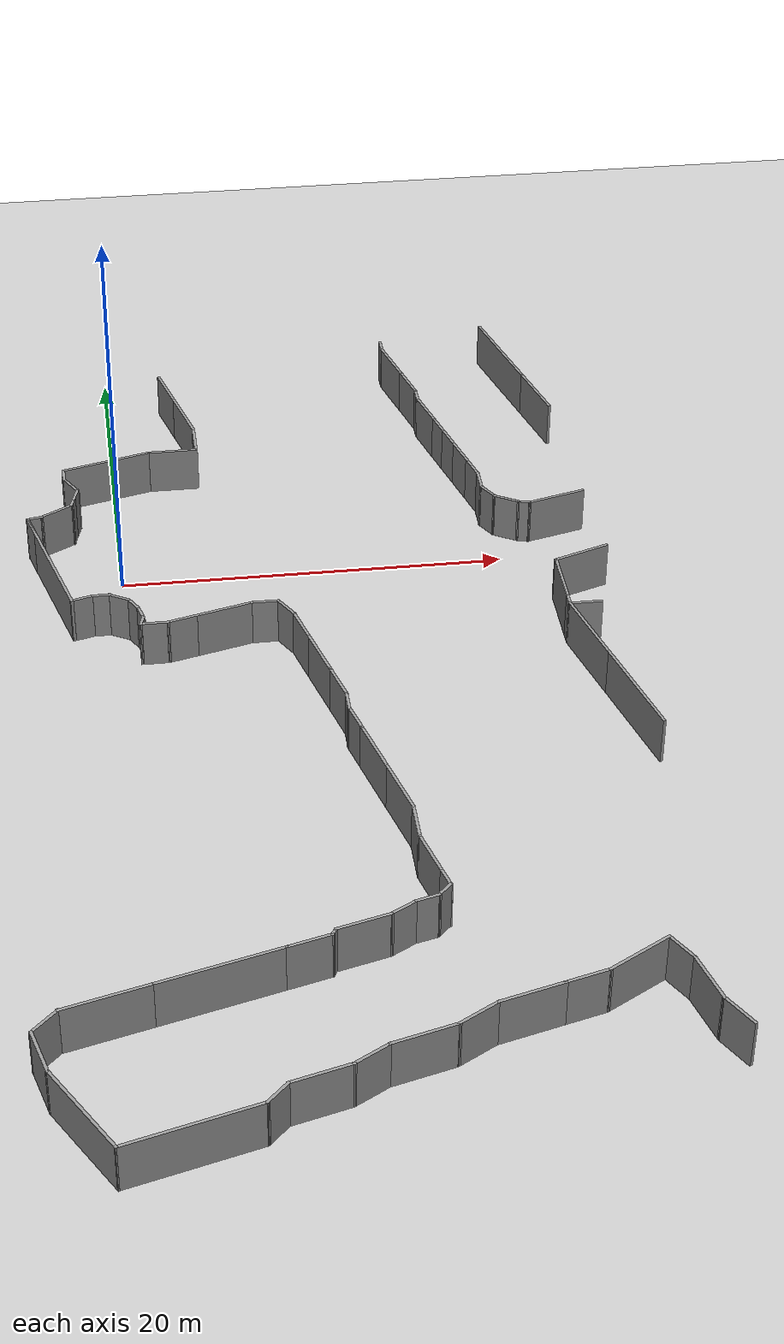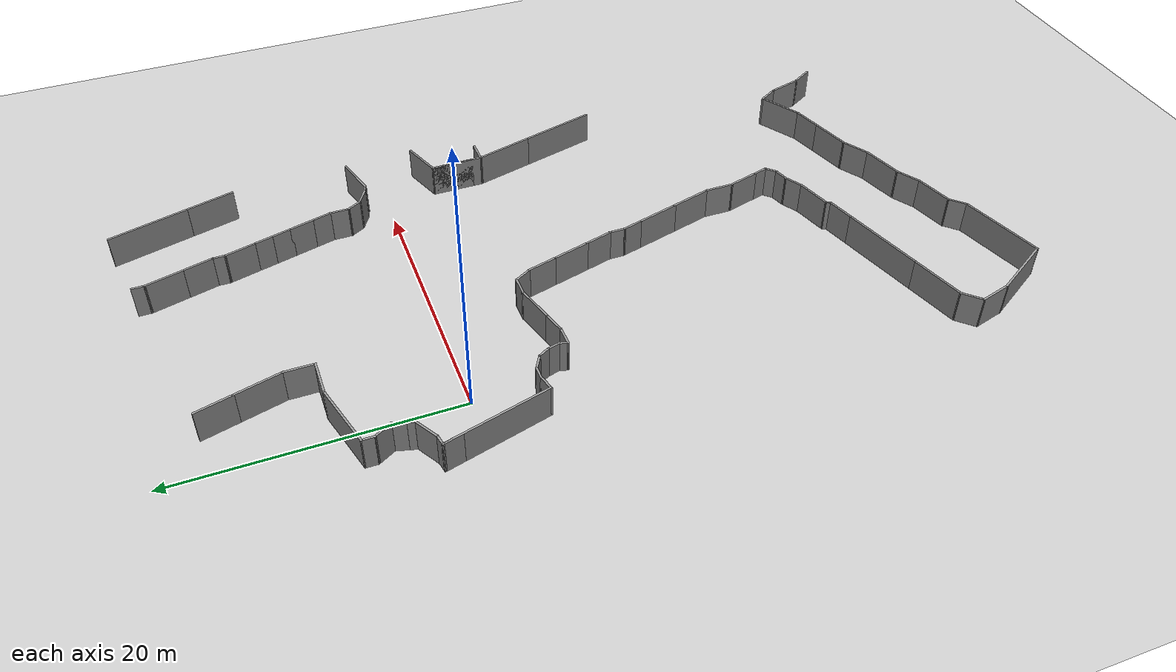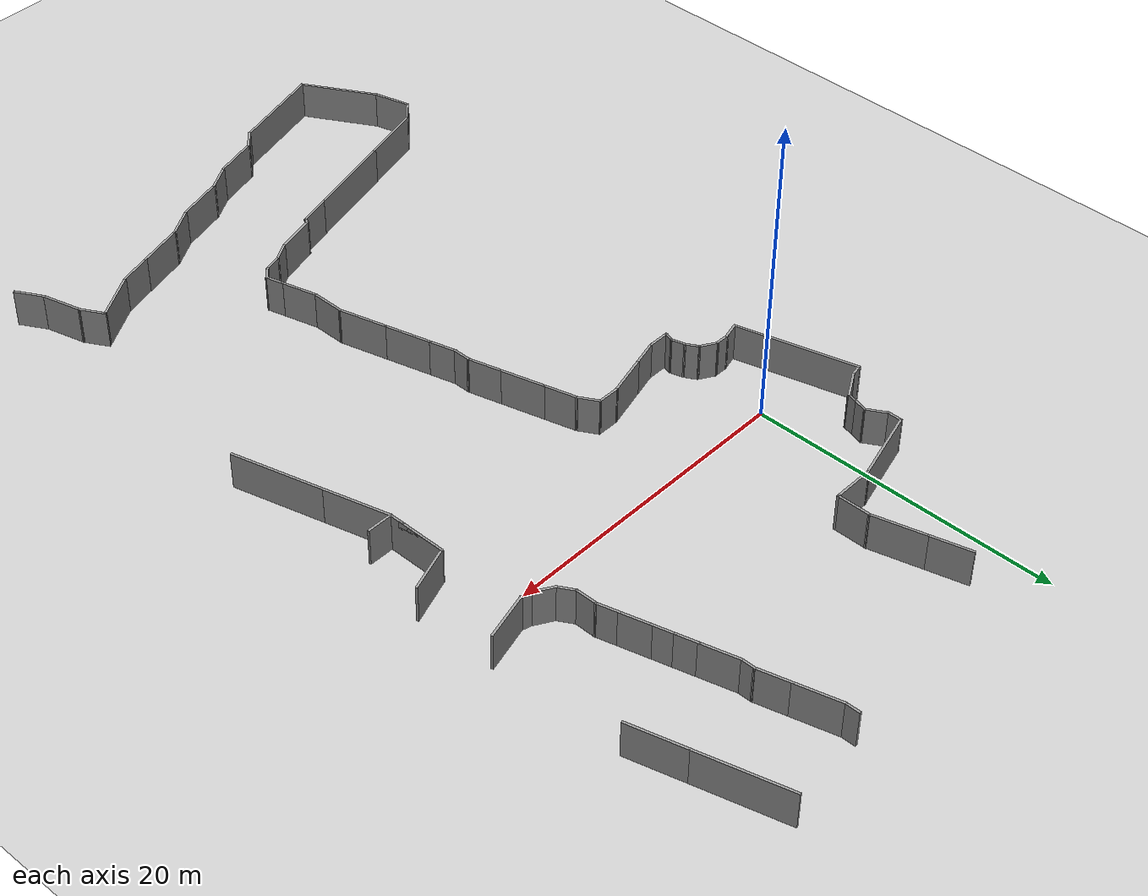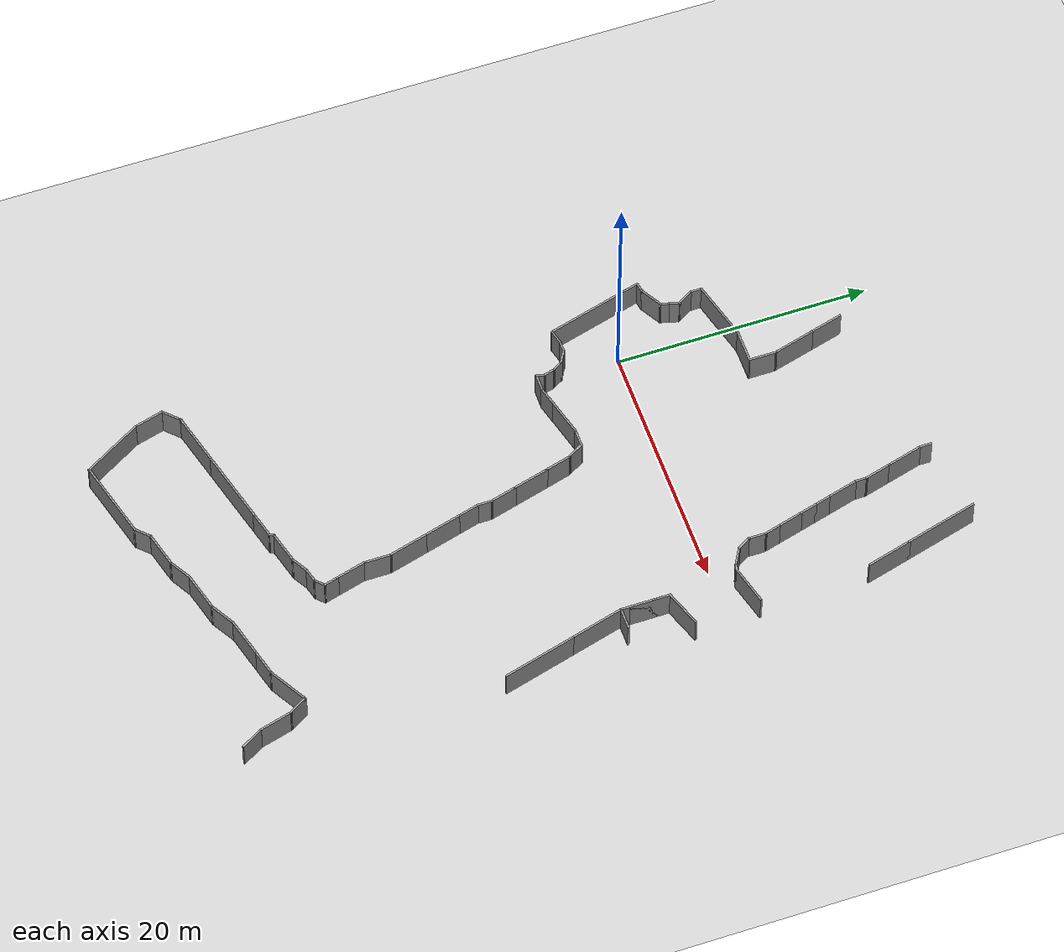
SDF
<sdf version="1.7">
 <world name="default">
  <model name="ground_plane">
   <static>1</static>
   <link name="link">
    <collision name="collision">
     <geometry><plane><normal>0 0 1</normal><size>500 500</size></plane></geometry>
     <surface><friction><ode><mu>100</mu><mu2>50</mu2></ode></friction></surface>
    </collision>
    <visual name="visual">
     <cast_shadows>0</cast_shadows>
     <geometry><plane><normal>0 0 1</normal><size>500 500</size></plane></geometry>
     <material>
      <script><uri>file://media/materials/scripts/gazebo.material</uri><name>Gazebo/Grey</name></script>
     </material>
    </visual>
   </link>
  </model>
  <model name="out_door1">
   <pose>25.5832 12.3476 0 0 -0 0</pose>
   <link name="Wall_10">
    <collision name="Wall_10_Collision">
     <geometry><box><size>1.75 0.15 2.5</size></box></geometry>
     <pose>0 0 1.25 0 -0 0</pose>
    </collision>
    <visual name="Wall_10_Visual">
     <pose>0 0 1.25 0 -0 0</pose>
     <geometry><box><size>1.75 0.15 2.5</size></box></geometry>
     <material>
      <script><uri>file://media/materials/scripts/gazebo.material</uri><name>Gazebo/Grey</name></script>
      <ambient>1 1 1 1</ambient>
     </material>
     <meta><layer>0</layer></meta>
    </visual>
    <pose>-22.8083 -18.9852 0 0 -0 0.261799</pose>
   </link>
   <link name="Wall_11">
    <collision name="Wall_11_Collision">
     <geometry><box><size>3 0.15 2.5</size></box></geometry>
     <pose>0 0 1.25 0 -0 0</pose>
    </collision>
    <visual name="Wall_11_Visual">
     <pose>0 0 1.25 0 -0 0</pose>
     <geometry><box><size>3 0.15 2.5</size></box></geometry>
     <material>
      <script><uri>file://media/materials/scripts/gazebo.material</uri><name>Gazebo/Grey</name></script>
      <ambient>1 1 1 1</ambient>
     </material>
     <meta><layer>0</layer></meta>
    </visual>
    <pose>-20.6591 -18.4094 0 0 -0 0.261799</pose>
   </link>
   <link name="Wall_12">
    <collision name="Wall_12_Collision">
     <geometry><box><size>1.5 0.15 2.5</size></box></geometry>
     <pose>0 0 1.25 0 -0 0</pose>
    </collision>
    <visual name="Wall_12_Visual">
     <pose>0 0 1.25 0 -0 0</pose>
     <geometry><box><size>1.5 0.15 2.5</size></box></geometry>
     <material>
      <script><uri>file://media/materials/scripts/gazebo.material</uri><name>Gazebo/Grey</name></script>
      <ambient>1 1 1 1</ambient>
     </material>
     <meta><layer>0</layer></meta>
    </visual>
    <pose>-18.6076 -18.0405 0 0 -0 0</pose>
   </link>
   <link name="Wall_14">
    <collision name="Wall_14_Collision">
     <geometry><box><size>1.5 0.15 2.5</size></box></geometry>
     <pose>0 0 1.25 0 -0 0</pose>
    </collision>
    <visual name="Wall_14_Visual">
     <pose>0 0 1.25 0 -0 0</pose>
     <geometry><box><size>1.5 0.15 2.5</size></box></geometry>
     <material>
      <script><uri>file://media/materials/scripts/gazebo.material</uri><name>Gazebo/Grey</name></script>
      <ambient>1 1 1 1</ambient>
     </material>
     <meta><layer>0</layer></meta>
    </visual>
    <pose>-17.5951 -18.6251 0 0 -0 -1.0472</pose>
   </link>
   <link name="Wall_15">
    <collision name="Wall_15_Collision">
     <geometry><box><size>2.25 0.15 2.5</size></box></geometry>
     <pose>0 0 1.25 0 -0 0</pose>
    </collision>
    <visual name="Wall_15_Visual">
     <pose>0 0 1.25 0 -0 0</pose>
     <geometry><box><size>2.25 0.15 2.5</size></box></geometry>
     <material>
      <script><uri>file://media/materials/scripts/gazebo.material</uri><name>Gazebo/Grey</name></script>
      <ambient>1 1 1 1</ambient>
     </material>
     <meta><layer>0</layer></meta>
    </visual>
    <pose>-16.9859 -20.2239 0 0 -0 -1.309</pose>
   </link>
   <link name="Wall_16">
    <collision name="Wall_16_Collision">
     <geometry><box><size>3 0.15 2.5</size></box></geometry>
     <pose>0 0 1.25 0 -0 0</pose>
    </collision>
    <visual name="Wall_16_Visual">
     <pose>0 0 1.25 0 -0 0</pose>
     <geometry><box><size>3 0.15 2.5</size></box></geometry>
     <material>
      <script><uri>file://media/materials/scripts/gazebo.material</uri><name>Gazebo/Grey</name></script>
      <ambient>1 1 1 1</ambient>
     </material>
     <meta><layer>0</layer></meta>
    </visual>
    <pose>-16.3453 -22.6146 0 0 -0 -1.309</pose>
   </link>
   <link name="Wall_17">
    <collision name="Wall_17_Collision">
     <geometry><box><size>2.25 0.15 2.5</size></box></geometry>
     <pose>0 0 1.25 0 -0 0</pose>
    </collision>
    <visual name="Wall_17_Visual">
     <pose>0 0 1.25 0 -0 0</pose>
     <geometry><box><size>2.25 0.15 2.5</size></box></geometry>
     <material>
      <script><uri>file://media/materials/scripts/gazebo.material</uri><name>Gazebo/Grey</name></script>
      <ambient>1 1 1 1</ambient>
     </material>
     <meta><layer>0</layer></meta>
    </visual>
    <pose>-15.7047 -25.0052 0 0 -0 -1.309</pose>
   </link>
   <link name="Wall_18">
    <collision name="Wall_18_Collision">
     <geometry><box><size>1.25 0.15 2.5</size></box></geometry>
     <pose>0 0 1.25 0 -0 0</pose>
    </collision>
    <visual name="Wall_18_Visual">
     <pose>0 0 1.25 0 -0 0</pose>
     <geometry><box><size>1.25 0.15 2.5</size></box></geometry>
     <material>
      <script><uri>file://media/materials/scripts/gazebo.material</uri><name>Gazebo/Grey</name></script>
      <ambient>1 1 1 1</ambient>
     </material>
     <meta><layer>0</layer></meta>
    </visual>
    <pose>-15.433 -26.5695 0 0 -0 -1.5708</pose>
   </link>
   <link name="Wall_19">
    <collision name="Wall_19_Collision">
     <geometry><box><size>1.75 0.15 2.5</size></box></geometry>
     <pose>0 0 1.25 0 -0 0</pose>
    </collision>
    <visual name="Wall_19_Visual">
     <pose>0 0 1.25 0 -0 0</pose>
     <geometry><box><size>1.75 0.15 2.5</size></box></geometry>
     <material>
      <script><uri>file://media/materials/scripts/gazebo.material</uri><name>Gazebo/Grey</name></script>
      <ambient>1 1 1 1</ambient>
     </material>
     <meta><layer>0</layer></meta>
    </visual>
    <pose>-15.2259 -27.8922 0 0 -0 -1.309</pose>
   </link>
   <link name="Wall_2">
    <collision name="Wall_2_Collision">
     <geometry><box><size>8 0.15 2.5</size></box></geometry>
     <pose>0 0 1.25 0 -0 0</pose>
    </collision>
    <visual name="Wall_2_Visual">
     <pose>0 0 1.25 0 -0 0</pose>
     <geometry><box><size>8 0.15 2.5</size></box></geometry>
     <material>
      <script><uri>file://media/materials/scripts/gazebo.material</uri><name>Gazebo/Grey</name></script>
      <ambient>1 1 1 1</ambient>
     </material>
     <meta><layer>0</layer></meta>
    </visual>
    <pose>-29.3017 -12.999 0 0 -0 -1.309</pose>
   </link>
   <link name="Wall_20">
    <collision name="Wall_20_Collision">
     <geometry><box><size>3.25 0.15 2.5</size></box></geometry>
     <pose>0 0 1.25 0 -0 0</pose>
    </collision>
    <visual name="Wall_20_Visual">
     <pose>0 0 1.25 0 -0 0</pose>
     <geometry><box><size>3.25 0.15 2.5</size></box></geometry>
     <material>
      <script><uri>file://media/materials/scripts/gazebo.material</uri><name>Gazebo/Grey</name></script>
      <ambient>1 1 1 1</ambient>
     </material>
     <meta><layer>0</layer></meta>
    </visual>
    <pose>-14.6177 -30.1621 0 0 -0 -1.309</pose>
   </link>
   <link name="Wall_21">
    <collision name="Wall_21_Collision">
     <geometry><box><size>3.25 0.15 2.5</size></box></geometry>
     <pose>0 0 1.25 0 -0 0</pose>
    </collision>
    <visual name="Wall_21_Visual">
     <pose>0 0 1.25 0 -0 0</pose>
     <geometry><box><size>3.25 0.15 2.5</size></box></geometry>
     <material>
      <script><uri>file://media/materials/scripts/gazebo.material</uri><name>Gazebo/Grey</name></script>
      <ambient>1 1 1 1</ambient>
     </material>
     <meta><layer>0</layer></meta>
    </visual>
    <pose>-13.8153 -33.1565 0 0 -0 -1.309</pose>
   </link>
   <link name="Wall_22">
    <collision name="Wall_22_Collision">
     <geometry><box><size>2.25 0.15 2.5</size></box></geometry>
     <pose>0 0 1.25 0 -0 0</pose>
    </collision>
    <visual name="Wall_22_Visual">
     <pose>0 0 1.25 0 -0 0</pose>
     <geometry><box><size>2.25 0.15 2.5</size></box></geometry>
     <material>
      <script><uri>file://media/materials/scripts/gazebo.material</uri><name>Gazebo/Grey</name></script>
      <ambient>1 1 1 1</ambient>
     </material>
     <meta><layer>0</layer></meta>
    </visual>
    <pose>-13.4142 -35.7037 0 0 -0 -1.5708</pose>
   </link>
   <link name="Wall_23">
    <collision name="Wall_23_Collision">
     <geometry><box><size>2.5 0.15 2.5</size></box></geometry>
     <pose>0 0 1.25 0 -0 0</pose>
    </collision>
    <visual name="Wall_23_Visual">
     <pose>0 0 1.25 0 -0 0</pose>
     <geometry><box><size>2.5 0.15 2.5</size></box></geometry>
     <material>
      <script><uri>file://media/materials/scripts/gazebo.material</uri><name>Gazebo/Grey</name></script>
      <ambient>1 1 1 1</ambient>
     </material>
     <meta><layer>0</layer></meta>
    </visual>
    <pose>-13.1101 -37.8886 0 0 -0 -1.309</pose>
   </link>
   <link name="Wall_24">
    <collision name="Wall_24_Collision">
     <geometry><box><size>1.25 0.15 2.5</size></box></geometry>
     <pose>0 0 1.25 0 -0 0</pose>
    </collision>
    <visual name="Wall_24_Visual">
     <pose>0 0 1.25 0 -0 0</pose>
     <geometry><box><size>1.25 0.15 2.5</size></box></geometry>
     <material>
      <script><uri>file://media/materials/scripts/gazebo.material</uri><name>Gazebo/Grey</name></script>
      <ambient>1 1 1 1</ambient>
     </material>
     <meta><layer>0</layer></meta>
    </visual>
    <pose>-12.6636 -39.5549 0 0 -0 -1.309</pose>
   </link>
   <link name="Wall_26">
    <collision name="Wall_26_Collision">
     <geometry><box><size>1 0.15 2.5</size></box></geometry>
     <pose>0 0 1.25 0 -0 0</pose>
    </collision>
    <visual name="Wall_26_Visual">
     <pose>0 0 1.25 0 -0 0</pose>
     <geometry><box><size>1 0.15 2.5</size></box></geometry>
     <material>
      <script><uri>file://media/materials/scripts/gazebo.material</uri><name>Gazebo/Grey</name></script>
      <ambient>1 1 1 1</ambient>
     </material>
     <meta><layer>0</layer></meta>
    </visual>
    <pose>-12.8218 -40.3866 0 0 -0 -2.35619</pose>
   </link>
   <link name="Wall_267">
    <collision name="Wall_267_Collision">
     <geometry><box><size>2.75 0.15 2.5</size></box></geometry>
     <pose>0 0 1.25 0 -0 0</pose>
    </collision>
    <visual name="Wall_267_Visual">
     <pose>0 0 1.25 0 -0 0</pose>
     <geometry><box><size>2.75 0.15 2.5</size></box></geometry>
     <material>
      <script><uri>file://media/materials/scripts/gazebo.material</uri><name>Gazebo/Grey</name></script>
      <ambient>1 1 1 1</ambient>
     </material>
     <meta><layer>0</layer></meta>
    </visual>
    <pose>-22.2121 3.1268 0 0 -0 -1.309</pose>
   </link>
   <link name="Wall_268">
    <collision name="Wall_268_Collision">
     <geometry><box><size>3.5 0.15 2.5</size></box></geometry>
     <pose>0 0 1.25 0 -0 0</pose>
    </collision>
    <visual name="Wall_268_Visual">
     <pose>0 0 1.25 0 -0 0</pose>
     <geometry><box><size>3.5 0.15 2.5</size></box></geometry>
     <material>
      <script><uri>file://media/materials/scripts/gazebo.material</uri><name>Gazebo/Grey</name></script>
      <ambient>1 1 1 1</ambient>
     </material>
     <meta><layer>0</layer></meta>
    </visual>
    <pose>-21.4421 0.25317 0 0 -0 -1.309</pose>
   </link>
   <link name="Wall_269">
    <collision name="Wall_269_Collision">
     <geometry><box><size>2.25 0.15 2.5</size></box></geometry>
     <pose>0 0 1.25 0 -0 0</pose>
    </collision>
    <visual name="Wall_269_Visual">
     <pose>0 0 1.25 0 -0 0</pose>
     <geometry><box><size>2.25 0.15 2.5</size></box></geometry>
     <material>
      <script><uri>file://media/materials/scripts/gazebo.material</uri><name>Gazebo/Grey</name></script>
      <ambient>1 1 1 1</ambient>
     </material>
     <meta><layer>0</layer></meta>
    </visual>
    <pose>-21.0086 -2.41475 0 0 -0 -1.5708</pose>
   </link>
   <link name="Wall_27">
    <collision name="Wall_27_Collision">
     <geometry><box><size>1.25 0.15 2.5</size></box></geometry>
     <pose>0 0 1.25 0 -0 0</pose>
    </collision>
    <visual name="Wall_27_Visual">
     <pose>0 0 1.25 0 -0 0</pose>
     <geometry><box><size>1.25 0.15 2.5</size></box></geometry>
     <material>
      <script><uri>file://media/materials/scripts/gazebo.material</uri><name>Gazebo/Grey</name></script>
      <ambient>1 1 1 1</ambient>
     </material>
     <meta><layer>0</layer></meta>
    </visual>
    <pose>-13.6535 -40.8295 0 0 -0 -2.87979</pose>
   </link>
   <link name="Wall_270">
    <collision name="Wall_270_Collision">
     <geometry><box><size>2.75 0.15 2.5</size></box></geometry>
     <pose>0 0 1.25 0 -0 0</pose>
    </collision>
    <visual name="Wall_270_Visual">
     <pose>0 0 1.25 0 -0 0</pose>
     <geometry><box><size>2.75 0.15 2.5</size></box></geometry>
     <material>
      <script><uri>file://media/materials/scripts/gazebo.material</uri><name>Gazebo/Grey</name></script>
      <ambient>1 1 1 1</ambient>
     </material>
     <meta><layer>0</layer></meta>
    </visual>
    <pose>-22.3086 -3.46475 0 0 -0 3.14159</pose>
   </link>
   <link name="Wall_271">
    <collision name="Wall_271_Collision">
     <geometry><box><size>5 0.15 2.5</size></box></geometry>
     <pose>0 0 1.25 0 -0 0</pose>
    </collision>
    <visual name="Wall_271_Visual">
     <pose>0 0 1.25 0 -0 0</pose>
     <geometry><box><size>5 0.15 2.5</size></box></geometry>
     <material>
      <script><uri>file://media/materials/scripts/gazebo.material</uri><name>Gazebo/Grey</name></script>
      <ambient>1 1 1 1</ambient>
     </material>
     <meta><layer>0</layer></meta>
    </visual>
    <pose>-25.9509 -4.09239 0 0 -0 -2.87979</pose>
   </link>
   <link name="Wall_272">
    <collision name="Wall_272_Collision">
     <geometry><box><size>1 0.15 2.5</size></box></geometry>
     <pose>0 0 1.25 0 -0 0</pose>
    </collision>
    <visual name="Wall_272_Visual">
     <pose>0 0 1.25 0 -0 0</pose>
     <geometry><box><size>1 0.15 2.5</size></box></geometry>
     <material>
      <script><uri>file://media/materials/scripts/gazebo.material</uri><name>Gazebo/Grey</name></script>
      <ambient>1 1 1 1</ambient>
     </material>
     <meta><layer>0</layer></meta>
    </visual>
    <pose>-28.2933 -5.14503 0 0 -0 -1.5708</pose>
   </link>
   <link name="Wall_273">
    <collision name="Wall_273_Collision">
     <geometry><box><size>1.5 0.15 2.5</size></box></geometry>
     <pose>0 0 1.25 0 -0 0</pose>
    </collision>
    <visual name="Wall_273_Visual">
     <pose>0 0 1.25 0 -0 0</pose>
     <geometry><box><size>1.5 0.15 2.5</size></box></geometry>
     <material>
      <script><uri>file://media/materials/scripts/gazebo.material</uri><name>Gazebo/Grey</name></script>
      <ambient>1 1 1 1</ambient>
     </material>
     <meta><layer>0</layer></meta>
    </visual>
    <pose>-27.9558 -6.15459 0 0 -0 -1.0472</pose>
   </link>
   <link name="Wall_274">
    <collision name="Wall_274_Collision">
     <geometry><box><size>1 0.15 2.5</size></box></geometry>
     <pose>0 0 1.25 0 -0 0</pose>
    </collision>
    <visual name="Wall_274_Visual">
     <pose>0 0 1.25 0 -0 0</pose>
     <geometry><box><size>1 0.15 2.5</size></box></geometry>
     <material>
      <script><uri>file://media/materials/scripts/gazebo.material</uri><name>Gazebo/Grey</name></script>
      <ambient>1 1 1 1</ambient>
     </material>
     <meta><layer>0</layer></meta>
    </visual>
    <pose>-27.7283 -7.14968 0 0 -0 -1.8326</pose>
   </link>
   <link name="Wall_275">
    <collision name="Wall_275_Collision">
     <geometry><box><size>0.75 0.15 2.5</size></box></geometry>
     <pose>0 0 1.25 0 -0 0</pose>
    </collision>
    <visual name="Wall_275_Visual">
     <pose>0 0 1.25 0 -0 0</pose>
     <geometry><box><size>0.75 0.15 2.5</size></box></geometry>
     <material>
      <script><uri>file://media/materials/scripts/gazebo.material</uri><name>Gazebo/Grey</name></script>
      <ambient>1 1 1 1</ambient>
     </material>
     <meta><layer>0</layer></meta>
    </visual>
    <pose>-27.9159 -7.84998 0 0 -0 -1.8326</pose>
   </link>
   <link name="Wall_276">
    <collision name="Wall_276_Collision">
     <geometry><box><size>2 0.15 2.5</size></box></geometry>
     <pose>0 0 1.25 0 -0 0</pose>
    </collision>
    <visual name="Wall_276_Visual">
     <pose>0 0 1.25 0 -0 0</pose>
     <geometry><box><size>2 0.15 2.5</size></box></geometry>
     <material>
      <script><uri>file://media/materials/scripts/gazebo.material</uri><name>Gazebo/Grey</name></script>
      <ambient>1 1 1 1</ambient>
     </material>
     <meta><layer>0</layer></meta>
    </visual>
    <pose>-28.7947 -8.60225 0 0 -0 -2.61799</pose>
   </link>
   <link name="Wall_277">
    <collision name="Wall_277_Collision">
     <geometry><box><size>0.885879 0.15 2.5</size></box></geometry>
     <pose>0 0 1.25 0 -0 0</pose>
    </collision>
    <visual name="Wall_277_Visual">
     <pose>0 0 1.25 0 -0 0</pose>
     <geometry><box><size>0.885879 0.15 2.5</size></box></geometry>
     <material>
      <script><uri>file://media/materials/scripts/gazebo.material</uri><name>Gazebo/Grey</name></script>
      <ambient>1 1 1 1</ambient>
     </material>
     <meta><layer>0</layer></meta>
    </visual>
    <pose>-29.9567 -9.13626 0 0 -0 -2.94602</pose>
   </link>
   <link name="Wall_278">
    <collision name="Wall_278_Collision">
     <geometry><box><size>1.5 0.15 2.5</size></box></geometry>
     <pose>0 0 1.25 0 -0 0</pose>
    </collision>
    <visual name="Wall_278_Visual">
     <pose>0 0 1.25 0 -0 0</pose>
     <geometry><box><size>1.5 0.15 2.5</size></box></geometry>
     <material>
      <script><uri>file://media/materials/scripts/gazebo.material</uri><name>Gazebo/Grey</name></script>
      <ambient>1 1 1 1</ambient>
     </material>
     <meta><layer>0</layer></meta>
    </visual>
    <pose>-30.1429 -9.85975 0 0 -0 -1.309</pose>
   </link>
   <link name="Wall_28">
    <collision name="Wall_28_Collision">
     <geometry><box><size>1.5 0.15 2.5</size></box></geometry>
     <pose>0 0 1.25 0 -0 0</pose>
    </collision>
    <visual name="Wall_28_Visual">
     <pose>0 0 1.25 0 -0 0</pose>
     <geometry><box><size>1.5 0.15 2.5</size></box></geometry>
     <material>
      <script><uri>file://media/materials/scripts/gazebo.material</uri><name>Gazebo/Grey</name></script>
      <ambient>1 1 1 1</ambient>
     </material>
     <meta><layer>0</layer></meta>
    </visual>
    <pose>-14.7694 -41.3094 0 0 -0 -2.61799</pose>
   </link>
   <link name="Wall_29">
    <collision name="Wall_29_Collision">
     <geometry><box><size>2.75 0.15 2.5</size></box></geometry>
     <pose>0 0 1.25 0 -0 0</pose>
    </collision>
    <visual name="Wall_29_Visual">
     <pose>0 0 1.25 0 -0 0</pose>
     <geometry><box><size>2.75 0.15 2.5</size></box></geometry>
     <material>
      <script><uri>file://media/materials/scripts/gazebo.material</uri><name>Gazebo/Grey</name></script>
      <ambient>1 1 1 1</ambient>
     </material>
     <meta><layer>0</layer></meta>
    </visual>
    <pose>-16.6096 -41.9833 0 0 -0 -2.87979</pose>
   </link>
   <link name="Wall_3">
    <collision name="Wall_3_Collision">
     <geometry><box><size>1.25 0.15 2.5</size></box></geometry>
     <pose>0 0 1.25 0 -0 0</pose>
    </collision>
    <visual name="Wall_3_Visual">
     <pose>0 0 1.25 0 -0 0</pose>
     <geometry><box><size>1.25 0.15 2.5</size></box></geometry>
     <material>
      <script><uri>file://media/materials/scripts/gazebo.material</uri><name>Gazebo/Grey</name></script>
      <ambient>1 1 1 1</ambient>
     </material>
     <meta><layer>0</layer></meta>
    </visual>
    <pose>-27.7546 -16.6479 0 0 -0 0.261799</pose>
   </link>
   <link name="Wall_30">
    <collision name="Wall_30_Collision">
     <geometry><box><size>0.5 0.15 2.5</size></box></geometry>
     <pose>0 0 1.25 0 -0 0</pose>
    </collision>
    <visual name="Wall_30_Visual">
     <pose>0 0 1.25 0 -0 0</pose>
     <geometry><box><size>0.5 0.15 2.5</size></box></geometry>
     <material>
      <script><uri>file://media/materials/scripts/gazebo.material</uri><name>Gazebo/Grey</name></script>
      <ambient>1 1 1 1</ambient>
     </material>
     <meta><layer>0</layer></meta>
    </visual>
    <pose>-17.9528 -42.4713 0 0 -0 -2.0944</pose>
   </link>
   <link name="Wall_31">
    <collision name="Wall_31_Collision">
     <geometry><box><size>2.25 0.15 2.5</size></box></geometry>
     <pose>0 0 1.25 0 -0 0</pose>
    </collision>
    <visual name="Wall_31_Visual">
     <pose>0 0 1.25 0 -0 0</pose>
     <geometry><box><size>2.25 0.15 2.5</size></box></geometry>
     <material>
      <script><uri>file://media/materials/scripts/gazebo.material</uri><name>Gazebo/Grey</name></script>
      <ambient>1 1 1 1</ambient>
     </material>
     <meta><layer>0</layer></meta>
    </visual>
    <pose>-19.0546 -42.8947 0 0 -0 -2.87979</pose>
   </link>
   <link name="Wall_33">
    <collision name="Wall_33_Collision">
     <geometry><box><size>6.25 0.15 2.5</size></box></geometry>
     <pose>0 0 1.25 0 -0 0</pose>
    </collision>
    <visual name="Wall_33_Visual">
     <pose>0 0 1.25 0 -0 0</pose>
     <geometry><box><size>6.25 0.15 2.5</size></box></geometry>
     <material>
      <script><uri>file://media/materials/scripts/gazebo.material</uri><name>Gazebo/Grey</name></script>
      <ambient>1 1 1 1</ambient>
     </material>
     <meta><layer>0</layer></meta>
    </visual>
    <pose>-23.0149 -43.9558 0 0 -0 -2.87979</pose>
   </link>
   <link name="Wall_34">
    <collision name="Wall_34_Collision">
     <geometry><box><size>4.25 0.15 2.5</size></box></geometry>
     <pose>0 0 1.25 0 -0 0</pose>
    </collision>
    <visual name="Wall_34_Visual">
     <pose>0 0 1.25 0 -0 0</pose>
     <geometry><box><size>4.25 0.15 2.5</size></box></geometry>
     <material>
      <script><uri>file://media/materials/scripts/gazebo.material</uri><name>Gazebo/Grey</name></script>
      <ambient>1 1 1 1</ambient>
     </material>
     <meta><layer>0</layer></meta>
    </visual>
    <pose>-27.9411 -45.2758 0 0 -0 -2.87979</pose>
   </link>
   <link name="Wall_35">
    <collision name="Wall_35_Collision">
     <geometry><box><size>1.75 0.15 2.5</size></box></geometry>
     <pose>0 0 1.25 0 -0 0</pose>
    </collision>
    <visual name="Wall_35_Visual">
     <pose>0 0 1.25 0 -0 0</pose>
     <geometry><box><size>1.75 0.15 2.5</size></box></geometry>
     <material>
      <script><uri>file://media/materials/scripts/gazebo.material</uri><name>Gazebo/Grey</name></script>
      <ambient>1 1 1 1</ambient>
     </material>
     <meta><layer>0</layer></meta>
    </visual>
    <pose>-30.4869 -46.3721 0 0 -0 -2.35619</pose>
   </link>
   <link name="Wall_36">
    <collision name="Wall_36_Collision">
     <geometry><box><size>2.5 0.15 2.5</size></box></geometry>
     <pose>0 0 1.25 0 -0 0</pose>
    </collision>
    <visual name="Wall_36_Visual">
     <pose>0 0 1.25 0 -0 0</pose>
     <geometry><box><size>2.5 0.15 2.5</size></box></geometry>
     <material>
      <script><uri>file://media/materials/scripts/gazebo.material</uri><name>Gazebo/Grey</name></script>
      <ambient>1 1 1 1</ambient>
     </material>
     <meta><layer>0</layer></meta>
    </visual>
    <pose>-30.7485 -48.0727 0 0 -0 -1.309</pose>
   </link>
   <link name="Wall_38">
    <collision name="Wall_38_Collision">
     <geometry><box><size>5.25 0.15 2.5</size></box></geometry>
     <pose>0 0 1.25 0 -0 0</pose>
    </collision>
    <visual name="Wall_38_Visual">
     <pose>0 0 1.25 0 -0 0</pose>
     <geometry><box><size>5.25 0.15 2.5</size></box></geometry>
     <material>
      <script><uri>file://media/materials/scripts/gazebo.material</uri><name>Gazebo/Grey</name></script>
      <ambient>1 1 1 1</ambient>
     </material>
     <meta><layer>0</layer></meta>
    </visual>
    <pose>-29.1694 -51.416 0 0 -0 -1.0472</pose>
   </link>
   <link name="Wall_383">
    <collision name="Wall_383_Collision">
     <geometry><box><size>3.25 0.15 2.5</size></box></geometry>
     <pose>0 0 1.25 0 -0 0</pose>
    </collision>
    <visual name="Wall_383_Visual">
     <pose>0 0 1.25 0 -0 0</pose>
     <geometry><box><size>3.25 0.15 2.5</size></box></geometry>
     <material>
      <script><uri>file://media/materials/scripts/gazebo.material</uri><name>Gazebo/Grey</name></script>
      <ambient>1 1 1 1</ambient>
     </material>
     <meta><layer>0</layer></meta>
    </visual>
    <pose>-2.2716 -10.3699 0 0 -0 -2.87979</pose>
   </link>
   <link name="Wall_384">
    <collision name="Wall_384_Collision">
     <geometry><box><size>0.75 0.15 2.5</size></box></geometry>
     <pose>0 0 1.25 0 -0 0</pose>
    </collision>
    <visual name="Wall_384_Visual">
     <pose>0 0 1.25 0 -0 0</pose>
     <geometry><box><size>0.75 0.15 2.5</size></box></geometry>
     <material>
      <script><uri>file://media/materials/scripts/gazebo.material</uri><name>Gazebo/Grey</name></script>
      <ambient>1 1 1 1</ambient>
     </material>
     <meta><layer>0</layer></meta>
    </visual>
    <pose>-4.05856 -10.6934 0 0 -0 2.87979</pose>
   </link>
   <link name="Wall_385">
    <collision name="Wall_385_Collision">
     <geometry><box><size>1.5 0.15 2.5</size></box></geometry>
     <pose>0 0 1.25 0 -0 0</pose>
    </collision>
    <visual name="Wall_385_Visual">
     <pose>0 0 1.25 0 -0 0</pose>
     <geometry><box><size>1.5 0.15 2.5</size></box></geometry>
     <material>
      <script><uri>file://media/materials/scripts/gazebo.material</uri><name>Gazebo/Grey</name></script>
      <ambient>1 1 1 1</ambient>
     </material>
     <meta><layer>0</layer></meta>
    </visual>
    <pose>-4.9329 -10.2783 0 0 -0 2.61799</pose>
   </link>
   <link name="Wall_386">
    <collision name="Wall_386_Collision">
     <geometry><box><size>1.25 0.15 2.5</size></box></geometry>
     <pose>0 0 1.25 0 -0 0</pose>
    </collision>
    <visual name="Wall_386_Visual">
     <pose>0 0 1.25 0 -0 0</pose>
     <geometry><box><size>1.25 0.15 2.5</size></box></geometry>
     <material>
      <script><uri>file://media/materials/scripts/gazebo.material</uri><name>Gazebo/Grey</name></script>
      <ambient>1 1 1 1</ambient>
     </material>
     <meta><layer>0</layer></meta>
    </visual>
    <pose>-5.79247 -9.46445 0 0 -0 2.0944</pose>
   </link>
   <link name="Wall_387">
    <collision name="Wall_387_Collision">
     <geometry><box><size>1.5 0.15 2.5</size></box></geometry>
     <pose>0 0 1.25 0 -0 0</pose>
    </collision>
    <visual name="Wall_387_Visual">
     <pose>0 0 1.25 0 -0 0</pose>
     <geometry><box><size>1.5 0.15 2.5</size></box></geometry>
     <material>
      <script><uri>file://media/materials/scripts/gazebo.material</uri><name>Gazebo/Grey</name></script>
      <ambient>1 1 1 1</ambient>
     </material>
     <meta><layer>0</layer></meta>
    </visual>
    <pose>-6.06747 -8.31314 0 0 -0 1.5708</pose>
   </link>
   <link name="Wall_388">
    <collision name="Wall_388_Collision">
     <geometry><box><size>1.5 0.15 2.5</size></box></geometry>
     <pose>0 0 1.25 0 -0 0</pose>
    </collision>
    <visual name="Wall_388_Visual">
     <pose>0 0 1.25 0 -0 0</pose>
     <geometry><box><size>1.5 0.15 2.5</size></box></geometry>
     <material>
      <script><uri>file://media/materials/scripts/gazebo.material</uri><name>Gazebo/Grey</name></script>
      <ambient>1 1 1 1</ambient>
     </material>
     <meta><layer>0</layer></meta>
    </visual>
    <pose>-6.24217 -6.98613 0 0 -0 1.8326</pose>
   </link>
   <link name="Wall_389">
    <collision name="Wall_389_Collision">
     <geometry><box><size>2 0.15 2.5</size></box></geometry>
     <pose>0 0 1.25 0 -0 0</pose>
    </collision>
    <visual name="Wall_389_Visual">
     <pose>0 0 1.25 0 -0 0</pose>
     <geometry><box><size>2 0.15 2.5</size></box></geometry>
     <material>
      <script><uri>file://media/materials/scripts/gazebo.material</uri><name>Gazebo/Grey</name></script>
      <ambient>1 1 1 1</ambient>
     </material>
     <meta><layer>0</layer></meta>
    </visual>
    <pose>-6.65628 -5.44065 0 0 -0 1.8326</pose>
   </link>
   <link name="Wall_39">
    <collision name="Wall_39_Collision">
     <geometry><box><size>6.5 0.15 2.5</size></box></geometry>
     <pose>0 0 1.25 0 -0 0</pose>
    </collision>
    <visual name="Wall_39_Visual">
     <pose>0 0 1.25 0 -0 0</pose>
     <geometry><box><size>6.5 0.15 2.5</size></box></geometry>
     <material>
      <script><uri>file://media/materials/scripts/gazebo.material</uri><name>Gazebo/Grey</name></script>
      <ambient>1 1 1 1</ambient>
     </material>
     <meta><layer>0</layer></meta>
    </visual>
    <pose>-24.8276 -52.8026 0 0 -0 0.261799</pose>
   </link>
   <link name="Wall_390">
    <collision name="Wall_390_Collision">
     <geometry><box><size>1.5 0.15 2.5</size></box></geometry>
     <pose>0 0 1.25 0 -0 0</pose>
    </collision>
    <visual name="Wall_390_Visual">
     <pose>0 0 1.25 0 -0 0</pose>
     <geometry><box><size>1.5 0.15 2.5</size></box></geometry>
     <material>
      <script><uri>file://media/materials/scripts/gazebo.material</uri><name>Gazebo/Grey</name></script>
      <ambient>1 1 1 1</ambient>
     </material>
     <meta><layer>0</layer></meta>
    </visual>
    <pose>-7.0704 -3.89517 0 0 -0 1.8326</pose>
   </link>
   <link name="Wall_392">
    <collision name="Wall_392_Collision">
     <geometry><box><size>1.5 0.15 2.5</size></box></geometry>
     <pose>0 0 1.25 0 -0 0</pose>
    </collision>
    <visual name="Wall_392_Visual">
     <pose>0 0 1.25 0 -0 0</pose>
     <geometry><box><size>1.5 0.15 2.5</size></box></geometry>
     <material>
      <script><uri>file://media/materials/scripts/gazebo.material</uri><name>Gazebo/Grey</name></script>
      <ambient>1 1 1 1</ambient>
     </material>
     <meta><layer>0</layer></meta>
    </visual>
    <pose>-7.4198 -2.59117 0 0 -0 1.8326</pose>
   </link>
   <link name="Wall_393">
    <collision name="Wall_393_Collision">
     <geometry><box><size>2.5 0.15 2.5</size></box></geometry>
     <pose>0 0 1.25 0 -0 0</pose>
    </collision>
    <visual name="Wall_393_Visual">
     <pose>0 0 1.25 0 -0 0</pose>
     <geometry><box><size>2.5 0.15 2.5</size></box></geometry>
     <material>
      <script><uri>file://media/materials/scripts/gazebo.material</uri><name>Gazebo/Grey</name></script>
      <ambient>1 1 1 1</ambient>
     </material>
     <meta><layer>0</layer></meta>
    </visual>
    <pose>-7.89862 -0.80421 0 0 -0 1.8326</pose>
   </link>
   <link name="Wall_394">
    <collision name="Wall_394_Collision">
     <geometry><box><size>1 0.15 2.5</size></box></geometry>
     <pose>0 0 1.25 0 -0 0</pose>
    </collision>
    <visual name="Wall_394_Visual">
     <pose>0 0 1.25 0 -0 0</pose>
     <geometry><box><size>1 0.15 2.5</size></box></geometry>
     <material>
      <script><uri>file://media/materials/scripts/gazebo.material</uri><name>Gazebo/Grey</name></script>
      <ambient>1 1 1 1</ambient>
     </material>
     <meta><layer>0</layer></meta>
    </visual>
    <pose>-8.20273 0.755753 0 0 -0 1.5708</pose>
   </link>
   <link name="Wall_395">
    <collision name="Wall_395_Collision">
     <geometry><box><size>2.25 0.15 2.5</size></box></geometry>
     <pose>0 0 1.25 0 -0 0</pose>
    </collision>
    <visual name="Wall_395_Visual">
     <pose>0 0 1.25 0 -0 0</pose>
     <geometry><box><size>2.25 0.15 2.5</size></box></geometry>
     <material>
      <script><uri>file://media/materials/scripts/gazebo.material</uri><name>Gazebo/Grey</name></script>
      <ambient>1 1 1 1</ambient>
     </material>
     <meta><layer>0</layer></meta>
    </visual>
    <pose>-8.47449 2.19497 0 0 -0 1.8326</pose>
   </link>
   <link name="Wall_396">
    <collision name="Wall_396_Collision">
     <geometry><box><size>3 0.15 2.5</size></box></geometry>
     <pose>0 0 1.25 0 -0 0</pose>
    </collision>
    <visual name="Wall_396_Visual">
     <pose>0 0 1.25 0 -0 0</pose>
     <geometry><box><size>3 0.15 2.5</size></box></geometry>
     <material>
      <script><uri>file://media/materials/scripts/gazebo.material</uri><name>Gazebo/Grey</name></script>
      <ambient>1 1 1 1</ambient>
     </material>
     <meta><layer>0</layer></meta>
    </visual>
    <pose>-9.11506 4.58564 0 0 -0 1.8326</pose>
   </link>
   <link name="Wall_397">
    <collision name="Wall_397_Collision">
     <geometry><box><size>1 0.15 2.5</size></box></geometry>
     <pose>0 0 1.25 0 -0 0</pose>
    </collision>
    <visual name="Wall_397_Visual">
     <pose>0 0 1.25 0 -0 0</pose>
     <geometry><box><size>1 0.15 2.5</size></box></geometry>
     <material>
      <script><uri>file://media/materials/scripts/gazebo.material</uri><name>Gazebo/Grey</name></script>
      <ambient>1 1 1 1</ambient>
     </material>
     <meta><layer>0</layer></meta>
    </visual>
    <pose>-9.48388 6.38708 0 0 -0 1.5708</pose>
   </link>
   <link name="Wall_4">
    <collision name="Wall_4_Collision">
     <geometry><box><size>1 0.15 2.5</size></box></geometry>
     <pose>0 0 1.25 0 -0 0</pose>
    </collision>
    <visual name="Wall_4_Visual">
     <pose>0 0 1.25 0 -0 0</pose>
     <geometry><box><size>1 0.15 2.5</size></box></geometry>
     <material>
      <script><uri>file://media/materials/scripts/gazebo.material</uri><name>Gazebo/Grey</name></script>
      <ambient>1 1 1 1</ambient>
     </material>
     <meta><layer>0</layer></meta>
    </visual>
    <pose>-26.7983 -16.5056 0 0 -0 0</pose>
   </link>
   <link name="Wall_40">
    <collision name="Wall_40_Collision">
     <geometry><box><size>1.5 0.15 2.5</size></box></geometry>
     <pose>0 0 1.25 0 -0 0</pose>
    </collision>
    <visual name="Wall_40_Visual">
     <pose>0 0 1.25 0 -0 0</pose>
     <geometry><box><size>1.5 0.15 2.5</size></box></geometry>
     <material>
      <script><uri>file://media/materials/scripts/gazebo.material</uri><name>Gazebo/Grey</name></script>
      <ambient>1 1 1 1</ambient>
     </material>
     <meta><layer>0</layer></meta>
    </visual>
    <pose>-21.2834 -51.5036 0 0 -0 0.785398</pose>
   </link>
   <link name="Wall_41">
    <collision name="Wall_41_Collision">
     <geometry><box><size>3 0.15 2.5</size></box></geometry>
     <pose>0 0 1.25 0 -0 0</pose>
    </collision>
    <visual name="Wall_41_Visual">
     <pose>0 0 1.25 0 -0 0</pose>
     <geometry><box><size>3 0.15 2.5</size></box></geometry>
     <material>
      <script><uri>file://media/materials/scripts/gazebo.material</uri><name>Gazebo/Grey</name></script>
      <ambient>1 1 1 1</ambient>
     </material>
     <meta><layer>0</layer></meta>
    </visual>
    <pose>-19.4297 -50.6575 0 0 -0 0.261799</pose>
   </link>
   <link name="Wall_42">
    <collision name="Wall_42_Collision">
     <geometry><box><size>2 0.15 2.5</size></box></geometry>
     <pose>0 0 1.25 0 -0 0</pose>
    </collision>
    <visual name="Wall_42_Visual">
     <pose>0 0 1.25 0 -0 0</pose>
     <geometry><box><size>2 0.15 2.5</size></box></geometry>
     <material>
      <script><uri>file://media/materials/scripts/gazebo.material</uri><name>Gazebo/Grey</name></script>
      <ambient>1 1 1 1</ambient>
     </material>
     <meta><layer>0</layer></meta>
    </visual>
    <pose>-17.2522 -49.8262 0 0 -0 0.523599</pose>
   </link>
   <link name="Wall_43">
    <collision name="Wall_43_Collision">
     <geometry><box><size>3.25 0.15 2.5</size></box></geometry>
     <pose>0 0 1.25 0 -0 0</pose>
    </collision>
    <visual name="Wall_43_Visual">
     <pose>0 0 1.25 0 -0 0</pose>
     <geometry><box><size>3.25 0.15 2.5</size></box></geometry>
     <material>
      <script><uri>file://media/materials/scripts/gazebo.material</uri><name>Gazebo/Grey</name></script>
      <ambient>1 1 1 1</ambient>
     </material>
     <meta><layer>0</layer></meta>
    </visual>
    <pose>-14.9539 -48.9625 0 0 -0 0.261799</pose>
   </link>
   <link name="Wall_44">
    <collision name="Wall_44_Collision">
     <geometry><box><size>2.25 0.15 2.5</size></box></geometry>
     <pose>0 0 1.25 0 -0 0</pose>
    </collision>
    <visual name="Wall_44_Visual">
     <pose>0 0 1.25 0 -0 0</pose>
     <geometry><box><size>2.25 0.15 2.5</size></box></geometry>
     <material>
      <script><uri>file://media/materials/scripts/gazebo.material</uri><name>Gazebo/Grey</name></script>
      <ambient>1 1 1 1</ambient>
     </material>
     <meta><layer>0</layer></meta>
    </visual>
    <pose>-12.5474 -48.0363 0 0 -0 0.523599</pose>
   </link>
   <link name="Wall_444">
    <collision name="Wall_444_Collision">
     <geometry><box><size>6 0.15 2.5</size></box></geometry>
     <pose>0 0 1.25 0 -0 0</pose>
    </collision>
    <visual name="Wall_444_Visual">
     <pose>0 0 1.25 0 -0 0</pose>
     <geometry><box><size>6 0.15 2.5</size></box></geometry>
     <material>
      <script><uri>file://media/materials/scripts/gazebo.material</uri><name>Gazebo/Grey</name></script>
      <ambient>1 1 1 1</ambient>
     </material>
     <meta><layer>0</layer></meta>
    </visual>
    <pose>-2.66921 5.04381 0 0 -0 -1.309</pose>
   </link>
   <link name="Wall_445">
    <collision name="Wall_445_Collision">
     <geometry><box><size>3.75 0.15 2.5</size></box></geometry>
     <pose>0 0 1.25 0 -0 0</pose>
    </collision>
    <visual name="Wall_445_Visual">
     <pose>0 0 1.25 0 -0 0</pose>
     <geometry><box><size>3.75 0.15 2.5</size></box></geometry>
     <material>
      <script><uri>file://media/materials/scripts/gazebo.material</uri><name>Gazebo/Grey</name></script>
      <ambient>1 1 1 1</ambient>
     </material>
     <meta><layer>0</layer></meta>
    </visual>
    <pose>-1.44629 0.479809 0 0 -0 -1.309</pose>
   </link>
   <link name="Wall_45">
    <collision name="Wall_45_Collision">
     <geometry><box><size>3.25 0.15 2.5</size></box></geometry>
     <pose>0 0 1.25 0 -0 0</pose>
    </collision>
    <visual name="Wall_45_Visual">
     <pose>0 0 1.25 0 -0 0</pose>
     <geometry><box><size>3.25 0.15 2.5</size></box></geometry>
     <material>
      <script><uri>file://media/materials/scripts/gazebo.material</uri><name>Gazebo/Grey</name></script>
      <ambient>1 1 1 1</ambient>
     </material>
     <meta><layer>0</layer></meta>
    </visual>
    <pose>-10.1409 -47.1102 0 0 -0 0.261799</pose>
   </link>
   <link name="Wall_46">
    <collision name="Wall_46_Collision">
     <geometry><box><size>2.25 0.15 2.5</size></box></geometry>
     <pose>0 0 1.25 0 -0 0</pose>
    </collision>
    <visual name="Wall_46_Visual">
     <pose>0 0 1.25 0 -0 0</pose>
     <geometry><box><size>2.25 0.15 2.5</size></box></geometry>
     <material>
      <script><uri>file://media/materials/scripts/gazebo.material</uri><name>Gazebo/Grey</name></script>
      <ambient>1 1 1 1</ambient>
     </material>
     <meta><layer>0</layer></meta>
    </visual>
    <pose>-7.6295 -46.4372 0 0 -0 0.261799</pose>
   </link>
   <link name="Wall_47">
    <collision name="Wall_47_Collision">
     <geometry><box><size>3.5 0.15 2.5</size></box></geometry>
     <pose>0 0 1.25 0 -0 0</pose>
    </collision>
    <visual name="Wall_47_Visual">
     <pose>0 0 1.25 0 -0 0</pose>
     <geometry><box><size>3.5 0.15 2.5</size></box></geometry>
     <material>
      <script><uri>file://media/materials/scripts/gazebo.material</uri><name>Gazebo/Grey</name></script>
      <ambient>1 1 1 1</ambient>
     </material>
     <meta><layer>0</layer></meta>
    </visual>
    <pose>-5.16468 -45.328 0 0 -0 0.523599</pose>
   </link>
   <link name="Wall_477">
    <collision name="Wall_477_Collision">
     <geometry><box><size>4 0.15 2.5</size></box></geometry>
     <pose>0 0 1.25 0 -0 0</pose>
    </collision>
    <visual name="Wall_477_Visual">
     <pose>0 0 1.25 0 -0 0</pose>
     <geometry><box><size>4 0.15 2.5</size></box></geometry>
     <material>
      <script><uri>file://media/materials/scripts/gazebo.material</uri><name>Gazebo/Grey</name></script>
      <ambient>1 1 1 1</ambient>
     </material>
     <meta><layer>0</layer></meta>
    </visual>
    <pose>-3.35146 -18.1064 0 0 -0 -1.5708</pose>
   </link>
   <link name="Wall_478">
    <collision name="Wall_478_Collision">
     <geometry><box><size>4.5 0.15 2.5</size></box></geometry>
     <pose>0 0 1.25 0 -0 0</pose>
    </collision>
    <visual name="Wall_478_Visual">
     <pose>0 0 1.25 0 -0 0</pose>
     <geometry><box><size>4.5 0.15 2.5</size></box></geometry>
     <material>
      <script><uri>file://media/materials/scripts/gazebo.material</uri><name>Gazebo/Grey</name></script>
      <ambient>1 1 1 1</ambient>
     </material>
     <meta><layer>0</layer></meta>
    </visual>
    <pose>-2.78853 -22.1323 0 0 -0 -1.309</pose>
   </link>
   <link name="Wall_479">
    <collision name="Wall_479_Collision">
     <geometry><box><size>6 0.15 2.5</size></box></geometry>
     <pose>0 0 1.25 0 -0 0</pose>
    </collision>
    <visual name="Wall_479_Visual">
     <pose>0 0 1.25 0 -0 0</pose>
     <geometry><box><size>6 0.15 2.5</size></box></geometry>
     <material>
      <script><uri>file://media/materials/scripts/gazebo.material</uri><name>Gazebo/Grey</name></script>
      <ambient>1 1 1 1</ambient>
     </material>
     <meta><layer>0</layer></meta>
    </visual>
    <pose>-1.46855 -27.0585 0 0 -0 -1.309</pose>
   </link>
   <link name="Wall_48">
    <collision name="Wall_48_Collision">
     <geometry><box><size>1.75 0.15 2.5</size></box></geometry>
     <pose>0 0 1.25 0 -0 0</pose>
    </collision>
    <visual name="Wall_48_Visual">
     <pose>0 0 1.25 0 -0 0</pose>
     <geometry><box><size>1.75 0.15 2.5</size></box></geometry>
     <material>
      <script><uri>file://media/materials/scripts/gazebo.material</uri><name>Gazebo/Grey</name></script>
      <ambient>1 1 1 1</ambient>
     </material>
     <meta><layer>0</layer></meta>
    </visual>
    <pose>-3.31409 -45.1833 0 0 -0 -1.0472</pose>
   </link>
   <link name="Wall_49">
    <collision name="Wall_49_Collision">
     <geometry><box><size>2.75 0.15 2.5</size></box></geometry>
     <pose>0 0 1.25 0 -0 0</pose>
    </collision>
    <visual name="Wall_49_Visual">
     <pose>0 0 1.25 0 -0 0</pose>
     <geometry><box><size>2.75 0.15 2.5</size></box></geometry>
     <material>
      <script><uri>file://media/materials/scripts/gazebo.material</uri><name>Gazebo/Grey</name></script>
      <ambient>1 1 1 1</ambient>
     </material>
     <meta><layer>0</layer></meta>
    </visual>
    <pose>-2.57762 -47.1318 0 0 -0 -1.309</pose>
   </link>
   <link name="Wall_5">
    <collision name="Wall_5_Collision">
     <geometry><box><size>1.25 0.15 2.5</size></box></geometry>
     <pose>0 0 1.25 0 -0 0</pose>
    </collision>
    <visual name="Wall_5_Visual">
     <pose>0 0 1.25 0 -0 0</pose>
     <geometry><box><size>1.25 0.15 2.5</size></box></geometry>
     <material>
      <script><uri>file://media/materials/scripts/gazebo.material</uri><name>Gazebo/Grey</name></script>
      <ambient>1 1 1 1</ambient>
     </material>
     <meta><layer>0</layer></meta>
    </visual>
    <pose>-25.897 -16.7806 0 0 -0 -0.523599</pose>
   </link>
   <link name="Wall_50">
    <collision name="Wall_50_Collision">
     <geometry><box><size>2 0.15 2.5</size></box></geometry>
     <pose>0 0 1.25 0 -0 0</pose>
    </collision>
    <visual name="Wall_50_Visual">
     <pose>0 0 1.25 0 -0 0</pose>
     <geometry><box><size>2 0.15 2.5</size></box></geometry>
     <material>
      <script><uri>file://media/materials/scripts/gazebo.material</uri><name>Gazebo/Grey</name></script>
      <ambient>1 1 1 1</ambient>
     </material>
     <meta><layer>0</layer></meta>
    </visual>
    <pose>-1.77866 -49.1886 0 0 -0 -1.0472</pose>
   </link>
   <link name="Wall_513">
    <collision name="Wall_513_Collision">
     <geometry><box><size>3.14078 0.15 2.5</size></box></geometry>
     <pose>0 0 1.25 0 -0 0</pose>
    </collision>
    <visual name="Wall_513_Visual">
     <pose>0 0 1.25 0 -0 0</pose>
     <geometry><box><size>3.14078 0.15 2.5</size></box></geometry>
     <material>
      <script><uri>file://media/materials/scripts/gazebo.material</uri><name>Gazebo/Grey</name></script>
      <ambient>1 1 1 1</ambient>
     </material>
     <meta><layer>0</layer></meta>
    </visual>
    <pose>-1.94154 -15.6831 0 0 -0 -2.80186</pose>
   </link>
   <link name="Wall_514">
    <collision name="Wall_514_Collision">
     <geometry><box><size>3.25 0.15 2.5</size></box></geometry>
     <pose>0 0 1.25 0 -0 0</pose>
    </collision>
    <visual name="Wall_514_Visual">
     <pose>0 0 1.25 0 -0 0</pose>
     <geometry><box><size>3.25 0.15 2.5</size></box></geometry>
     <material>
      <script><uri>file://media/materials/scripts/gazebo.material</uri><name>Gazebo/Grey</name></script>
      <ambient>1 1 1 1</ambient>
     </material>
     <meta><layer>0</layer></meta>
    </visual>
    <pose>-3.35146 -17.7314 0 0 -0 -1.5708</pose>
   </link>
   <link name="Wall_534">
    <collision name="Wall_534_Collision">
     <geometry><box><size>1.75 0.15 2.5</size></box></geometry>
     <pose>0 0 1.25 0 -0 0</pose>
    </collision>
    <visual name="Wall_534_Visual">
     <pose>0 0 1.25 0 -0 0</pose>
     <geometry><box><size>1.75 0.15 2.5</size></box></geometry>
     <material>
      <script><uri>file://media/materials/scripts/gazebo.material</uri><name>Gazebo/Grey</name></script>
      <ambient>1 1 1 1</ambient>
     </material>
     <meta><layer>0</layer></meta>
    </visual>
    <pose>-2.55146 -20.0314 0 0 -0 0</pose>
   </link>
   <link name="Wall_6">
    <collision name="Wall_6_Collision">
     <geometry><box><size>1 0.15 2.5</size></box></geometry>
     <pose>0 0 1.25 0 -0 0</pose>
    </collision>
    <visual name="Wall_6_Visual">
     <pose>0 0 1.25 0 -0 0</pose>
     <geometry><box><size>1 0.15 2.5</size></box></geometry>
     <material>
      <script><uri>file://media/materials/scripts/gazebo.material</uri><name>Gazebo/Grey</name></script>
      <ambient>1 1 1 1</ambient>
     </material>
     <meta><layer>0</layer></meta>
    </visual>
    <pose>-25.2082 -17.4236 0 0 -0 -1.0472</pose>
   </link>
   <link name="Wall_7">
    <collision name="Wall_7_Collision">
     <geometry><box><size>1 0.15 2.5</size></box></geometry>
     <pose>0 0 1.25 0 -0 0</pose>
    </collision>
    <visual name="Wall_7_Visual">
     <pose>0 0 1.25 0 -0 0</pose>
     <geometry><box><size>1 0.15 2.5</size></box></geometry>
     <material>
      <script><uri>file://media/materials/scripts/gazebo.material</uri><name>Gazebo/Grey</name></script>
      <ambient>1 1 1 1</ambient>
     </material>
     <meta><layer>0</layer></meta>
    </visual>
    <pose>-24.8857 -18.2022 0 0 -0 -1.309</pose>
   </link>
   <link name="Wall_8">
    <collision name="Wall_8_Collision">
     <geometry><box><size>0.75 0.15 2.5</size></box></geometry>
     <pose>0 0 1.25 0 -0 0</pose>
    </collision>
    <visual name="Wall_8_Visual">
     <pose>0 0 1.25 0 -0 0</pose>
     <geometry><box><size>0.75 0.15 2.5</size></box></geometry>
     <material>
      <script><uri>file://media/materials/scripts/gazebo.material</uri><name>Gazebo/Grey</name></script>
      <ambient>1 1 1 1</ambient>
     </material>
     <meta><layer>0</layer></meta>
    </visual>
    <pose>-24.8534 -18.9025 0 0 -0 -1.8326</pose>
   </link>
   <link name="Wall_9">
    <collision name="Wall_9_Collision">
     <geometry><box><size>1.5 0.15 2.5</size></box></geometry>
     <pose>0 0 1.25 0 -0 0</pose>
    </collision>
    <visual name="Wall_9_Visual">
     <pose>0 0 1.25 0 -0 0</pose>
     <geometry><box><size>1.5 0.15 2.5</size></box></geometry>
     <material>
      <script><uri>file://media/materials/scripts/gazebo.material</uri><name>Gazebo/Grey</name></script>
      <ambient>1 1 1 1</ambient>
     </material>
     <meta><layer>0</layer></meta>
    </visual>
    <pose>-24.256 -19.1923 0 0 -0 0</pose>
   </link>
   <static>1</static>
  </model>
 </world>
</sdf>
